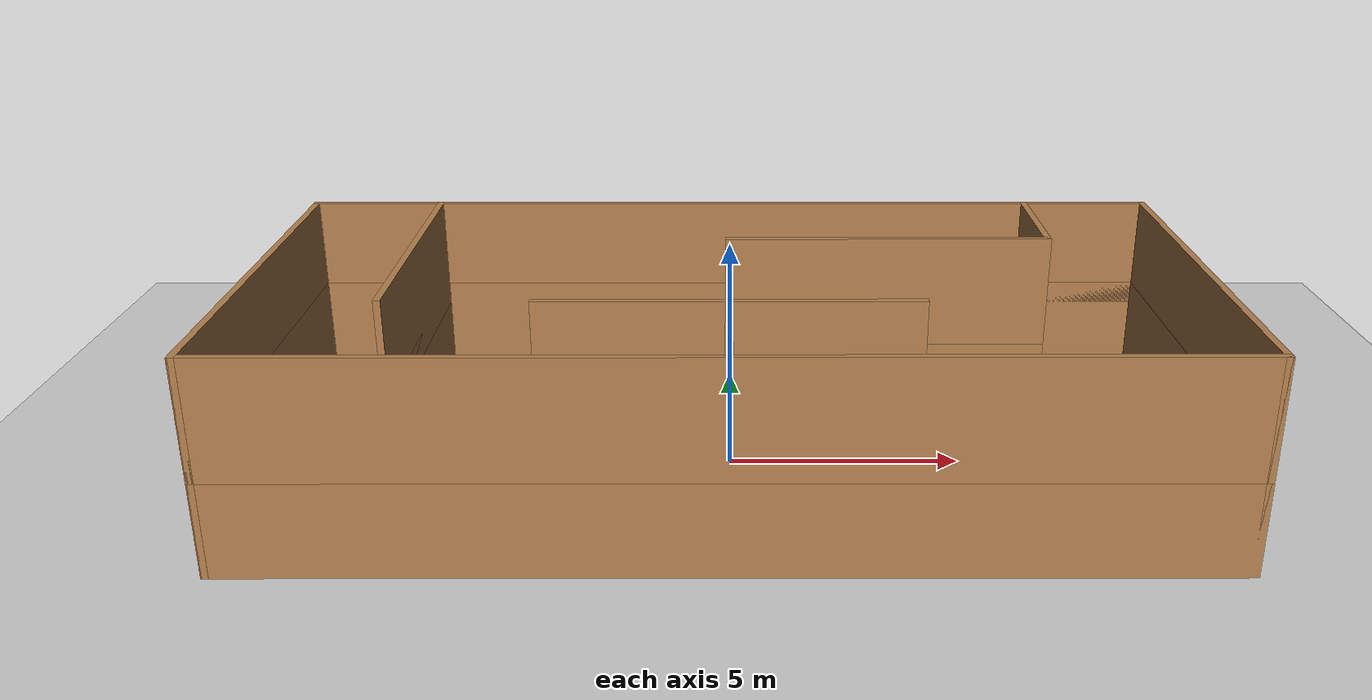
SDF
<sdf version="1.6">
 <world name="default">
  <light name="sun" type="directional">
   <pose>0 0 10 0 -0 0</pose>
   <diffuse>0.8 0.8 0.8 1</diffuse>
   <specular>0.2 0.2 0.2 1</specular>
   <attenuation>
    <range>1000</range>
    <constant>0.9</constant>
    <linear>0.01</linear>
    <quadratic>0.001</quadratic>
   </attenuation>
   <direction>-0.5 0.1 -0.9</direction>
  </light>
  <model name="ground_plane">
   <static>1</static>
   <link name="link">
    <collision name="collision">
     <geometry><plane><normal>0 0 1</normal><size>100 100</size></plane></geometry>
     <surface>
      <contact><collide_bitmask>65535</collide_bitmask></contact>
      <friction><ode><mu>100</mu><mu2>50</mu2></ode></friction>
     </surface>
    </collision>
    <visual name="visual">
     <cast_shadows>0</cast_shadows>
     <geometry><plane><normal>0 0 1</normal><size>100 100</size></plane></geometry>
     <material>
      <script><uri>file://media/materials/scripts/gazebo.material</uri><name>Gazebo/Grey</name></script>
     </material>
    </visual>
   </link>
  </model>
  <gravity>0 0 -9.8</gravity>
  <magnetic_field>6e-06 2.3e-05 -4.2e-05</magnetic_field>
  <atmosphere type="adiabatic"/>
  <physics name="default_physics" default="0" type="ode">
   <max_step_size>0.001</max_step_size>
   <real_time_factor>1</real_time_factor>
   <real_time_update_rate>1000</real_time_update_rate>
  </physics>
  <scene><ambient>0.4 0.4 0.4 1</ambient><background>0.7 0.7 0.7 1</background><shadows>1</shadows></scene>
  <spherical_coordinates>
   <surface_model>EARTH_WGS84</surface_model>
   <latitude_deg>0</latitude_deg>
   <longitude_deg>0</longitude_deg>
   <elevation>0</elevation>
   <heading_deg>0</heading_deg>
  </spherical_coordinates>
  <physics name="default_physics" default="0" type="ode">
   <ode>
    <solver>
     <type>quick</type>
     <iters>20</iters>
     <sor>1.3</sor>
     <use_dynamic_moi_rescaling>0</use_dynamic_moi_rescaling>
    </solver>
    <constraints>
     <cfm>0</cfm>
     <erp>0.2</erp>
     <contact_max_correcting_vel>100</contact_max_correcting_vel>
     <contact_surface_layer>0.001</contact_surface_layer>
    </constraints>
   </ode>
   <max_step_size>0.002</max_step_size>
   <real_time_factor>1</real_time_factor>
   <real_time_update_rate>500</real_time_update_rate>
  </physics>
  <audio><device>default</device></audio>
  <model name="apartment">
   <link name="Wall_0">
    <collision name="Wall_0_Collision">
     <geometry><box><size>20 0.15 2.5</size></box></geometry>
     <pose>0 0 1.25 0 -0 0</pose>
    </collision>
    <visual name="Wall_0_Visual">
     <pose>0 0 1.25 0 -0 0</pose>
     <geometry><box><size>20 0.15 2.5</size></box></geometry>
     <material>
      <script><uri>file://media/materials/scripts/gazebo.material</uri><name>Gazebo/Wood</name></script>
      <ambient>1 1 1 1</ambient>
     </material>
    </visual>
    <pose>0 -4.925 0 0 -0 0</pose>
   </link>
   <link name="Wall_1">
    <collision name="Wall_1_Collision">
     <geometry><box><size>10 0.15 2.5</size></box></geometry>
     <pose>0 0 1.25 0 -0 0</pose>
    </collision>
    <visual name="Wall_1_Visual">
     <pose>0 0 1.25 0 -0 0</pose>
     <geometry><box><size>10 0.15 2.5</size></box></geometry>
     <material>
      <script><uri>file://media/materials/scripts/gazebo.material</uri><name>Gazebo/Wood</name></script>
      <ambient>1 1 1 1</ambient>
     </material>
    </visual>
    <pose>9.925 0 0 0 -0 1.5708</pose>
   </link>
   <link name="Wall_11">
    <collision name="Wall_11_Collision">
     <geometry><box><size>3 0.15 2.5</size></box></geometry>
     <pose>0 0 1.25 0 -0 0</pose>
    </collision>
    <visual name="Wall_11_Visual">
     <pose>0 0 1.25 0 -0 0</pose>
     <geometry><box><size>3 0.15 2.5</size></box></geometry>
     <material>
      <script><uri>file://media/materials/scripts/gazebo.material</uri><name>Gazebo/Wood</name></script>
      <ambient>1 1 1 1</ambient>
     </material>
    </visual>
    <pose>-0.023615 -3.42368 0 0 -0 1.5708</pose>
   </link>
   <link name="Wall_12">
    <collision name="Wall_12_Collision">
     <geometry><box><size>4 0.15 2.5</size></box></geometry>
     <pose>0 0 1.25 0 -0 0</pose>
    </collision>
    <visual name="Wall_12_Visual">
     <pose>0 0 1.25 0 -0 0</pose>
     <geometry><box><size>4 0.15 2.5</size></box></geometry>
     <material>
      <script><uri>file://media/materials/scripts/gazebo.material</uri><name>Gazebo/Wood</name></script>
      <ambient>1 1 1 1</ambient>
     </material>
    </visual>
    <pose>-1.94862 -1.99868 0 0 -0 3.14159</pose>
   </link>
   <link name="Wall_14">
    <collision name="Wall_14_Collision">
     <geometry><box><size>4 0.15 2.5</size></box></geometry>
     <pose>0 0 1.25 0 -0 0</pose>
    </collision>
    <visual name="Wall_14_Visual">
     <pose>0 0 1.25 0 -0 0</pose>
     <geometry><box><size>4 0.15 2.5</size></box></geometry>
     <material>
      <script><uri>file://media/materials/scripts/gazebo.material</uri><name>Gazebo/Wood</name></script>
      <ambient>1 1 1 1</ambient>
     </material>
    </visual>
    <pose>1.90138 -1.99868 0 0 -0 0</pose>
   </link>
   <link name="Wall_2">
    <collision name="Wall_2_Collision">
     <geometry><box><size>20 0.15 2.5</size></box></geometry>
     <pose>0 0 1.25 0 -0 0</pose>
    </collision>
    <visual name="Wall_2_Visual">
     <pose>0 0 1.25 0 -0 0</pose>
     <geometry><box><size>20 0.15 2.5</size></box></geometry>
     <material>
      <script><uri>file://media/materials/scripts/gazebo.material</uri><name>Gazebo/Wood</name></script>
      <ambient>1 1 1 1</ambient>
     </material>
    </visual>
    <pose>0 4.925 0 0 -0 3.14159</pose>
   </link>
   <link name="Wall_20">
    <collision name="Wall_20_Collision">
     <geometry><box><size>7 0.15 2.5</size></box></geometry>
     <pose>0 0 1.25 0 -0 0</pose>
    </collision>
    <visual name="Wall_20_Visual">
     <pose>0 0 1.25 0 -0 0</pose>
     <geometry><box><size>7 0.15 2.5</size></box></geometry>
     <material>
      <script><uri>file://media/materials/scripts/gazebo.material</uri><name>Gazebo/Wood</name></script>
      <ambient>1 1 1 1</ambient>
     </material>
    </visual>
    <pose>-6.94656 1.49076 0 0 0 -1.5708</pose>
   </link>
   <link name="Wall_27">
    <collision name="Wall_27_Collision">
     <geometry><box><size>3 0.15 2.5</size></box></geometry>
     <pose>0 0 1.25 0 -0 0</pose>
    </collision>
    <visual name="Wall_27_Visual">
     <pose>0 0 1.25 0 -0 0</pose>
     <geometry><box><size>3 0.15 2.5</size></box></geometry>
     <material>
      <script><uri>file://media/materials/scripts/gazebo.material</uri><name>Gazebo/Wood</name></script>
      <ambient>1 1 1 1</ambient>
     </material>
    </visual>
    <pose>7.075 3.5 0 0 0 -1.5708</pose>
   </link>
   <link name="Wall_28">
    <collision name="Wall_28_Collision">
     <geometry><box><size>7.25 0.15 2.5</size></box></geometry>
     <pose>0 0 1.25 0 -0 0</pose>
    </collision>
    <visual name="Wall_28_Visual">
     <pose>0 0 1.25 0 -0 0</pose>
     <geometry><box><size>7.25 0.15 2.5</size></box></geometry>
     <material>
      <script><uri>file://media/materials/scripts/gazebo.material</uri><name>Gazebo/Wood</name></script>
      <ambient>1 1 1 1</ambient>
     </material>
    </visual>
    <pose>3.525 2.075 0 0 -0 3.14159</pose>
   </link>
   <link name="Wall_3">
    <collision name="Wall_3_Collision">
     <geometry><box><size>10 0.15 2.5</size></box></geometry>
     <pose>0 0 1.25 0 -0 0</pose>
    </collision>
    <visual name="Wall_3_Visual">
     <pose>0 0 1.25 0 -0 0</pose>
     <geometry><box><size>10 0.15 2.5</size></box></geometry>
     <material>
      <script><uri>file://media/materials/scripts/gazebo.material</uri><name>Gazebo/Wood</name></script>
      <ambient>1 1 1 1</ambient>
     </material>
    </visual>
    <pose>-9.925 0 0 0 0 -1.5708</pose>
   </link>
   <static>1</static>
  </model>
  <model name="apartment_0">
   <pose>0 0 2 0 -0 0</pose>
   <link name="Wall_0">
    <collision name="Wall_0_Collision">
     <geometry><box><size>20 0.15 2.5</size></box></geometry>
     <pose>0 0 1.25 0 -0 0</pose>
    </collision>
    <visual name="Wall_0_Visual">
     <pose>0 0 1.25 0 -0 0</pose>
     <geometry><box><size>20 0.15 2.5</size></box></geometry>
     <material>
      <script><uri>file://media/materials/scripts/gazebo.material</uri><name>Gazebo/Wood</name></script>
      <ambient>1 1 1 1</ambient>
     </material>
    </visual>
    <pose>0 -4.925 0 0 -0 0</pose>
   </link>
   <link name="Wall_1">
    <collision name="Wall_1_Collision">
     <geometry><box><size>10 0.15 2.5</size></box></geometry>
     <pose>0 0 1.25 0 -0 0</pose>
    </collision>
    <visual name="Wall_1_Visual">
     <pose>0 0 1.25 0 -0 0</pose>
     <geometry><box><size>10 0.15 2.5</size></box></geometry>
     <material>
      <script><uri>file://media/materials/scripts/gazebo.material</uri><name>Gazebo/Wood</name></script>
      <ambient>1 1 1 1</ambient>
     </material>
    </visual>
    <pose>9.925 0 0 0 -0 1.5708</pose>
   </link>
   <link name="Wall_11">
    <collision name="Wall_11_Collision">
     <geometry><box><size>3 0.15 2.5</size></box></geometry>
     <pose>0 0 1.25 0 -0 0</pose>
    </collision>
    <visual name="Wall_11_Visual">
     <pose>0 0 1.25 0 -0 0</pose>
     <geometry><box><size>3 0.15 2.5</size></box></geometry>
     <material>
      <script><uri>file://media/materials/scripts/gazebo.material</uri><name>Gazebo/Wood</name></script>
      <ambient>1 1 1 1</ambient>
     </material>
    </visual>
    <pose>-0.023615 -3.42368 0 0 -0 1.5708</pose>
   </link>
   <link name="Wall_12">
    <collision name="Wall_12_Collision">
     <geometry><box><size>4 0.15 2.5</size></box></geometry>
     <pose>0 0 1.25 0 -0 0</pose>
    </collision>
    <visual name="Wall_12_Visual">
     <pose>0 0 1.25 0 -0 0</pose>
     <geometry><box><size>4 0.15 2.5</size></box></geometry>
     <material>
      <script><uri>file://media/materials/scripts/gazebo.material</uri><name>Gazebo/Wood</name></script>
      <ambient>1 1 1 1</ambient>
     </material>
    </visual>
    <pose>-1.94862 -1.99868 0 0 -0 3.14159</pose>
   </link>
   <link name="Wall_14">
    <collision name="Wall_14_Collision">
     <geometry><box><size>4 0.15 2.5</size></box></geometry>
     <pose>0 0 1.25 0 -0 0</pose>
    </collision>
    <visual name="Wall_14_Visual">
     <pose>0 0 1.25 0 -0 0</pose>
     <geometry><box><size>4 0.15 2.5</size></box></geometry>
     <material>
      <script><uri>file://media/materials/scripts/gazebo.material</uri><name>Gazebo/Wood</name></script>
      <ambient>1 1 1 1</ambient>
     </material>
    </visual>
    <pose>1.90138 -1.99868 0 0 -0 0</pose>
   </link>
   <link name="Wall_2">
    <collision name="Wall_2_Collision">
     <geometry><box><size>20 0.15 2.5</size></box></geometry>
     <pose>0 0 1.25 0 -0 0</pose>
    </collision>
    <visual name="Wall_2_Visual">
     <pose>0 0 1.25 0 -0 0</pose>
     <geometry><box><size>20 0.15 2.5</size></box></geometry>
     <material>
      <script><uri>file://media/materials/scripts/gazebo.material</uri><name>Gazebo/Wood</name></script>
      <ambient>1 1 1 1</ambient>
     </material>
    </visual>
    <pose>0 4.925 0 0 -0 3.14159</pose>
   </link>
   <link name="Wall_20">
    <collision name="Wall_20_Collision">
     <geometry><box><size>7 0.15 2.5</size></box></geometry>
     <pose>0 0 1.25 0 -0 0</pose>
    </collision>
    <visual name="Wall_20_Visual">
     <pose>0 0 1.25 0 -0 0</pose>
     <geometry><box><size>7 0.15 2.5</size></box></geometry>
     <material>
      <script><uri>file://media/materials/scripts/gazebo.material</uri><name>Gazebo/Wood</name></script>
      <ambient>1 1 1 1</ambient>
     </material>
    </visual>
    <pose>-6.94656 1.49076 0 0 0 -1.5708</pose>
   </link>
   <link name="Wall_27">
    <collision name="Wall_27_Collision">
     <geometry><box><size>3 0.15 2.5</size></box></geometry>
     <pose>0 0 1.25 0 -0 0</pose>
    </collision>
    <visual name="Wall_27_Visual">
     <pose>0 0 1.25 0 -0 0</pose>
     <geometry><box><size>3 0.15 2.5</size></box></geometry>
     <material>
      <script><uri>file://media/materials/scripts/gazebo.material</uri><name>Gazebo/Wood</name></script>
      <ambient>1 1 1 1</ambient>
     </material>
    </visual>
    <pose>7.075 3.5 0 0 0 -1.5708</pose>
   </link>
   <link name="Wall_28">
    <collision name="Wall_28_Collision">
     <geometry><box><size>7.25 0.15 2.5</size></box></geometry>
     <pose>0 0 1.25 0 -0 0</pose>
    </collision>
    <visual name="Wall_28_Visual">
     <pose>0 0 1.25 0 -0 0</pose>
     <geometry><box><size>7.25 0.15 2.5</size></box></geometry>
     <material>
      <script><uri>file://media/materials/scripts/gazebo.material</uri><name>Gazebo/Wood</name></script>
      <ambient>1 1 1 1</ambient>
     </material>
    </visual>
    <pose>3.525 2.075 0 0 -0 3.14159</pose>
   </link>
   <link name="Wall_3">
    <collision name="Wall_3_Collision">
     <geometry><box><size>10 0.15 2.5</size></box></geometry>
     <pose>0 0 1.25 0 -0 0</pose>
    </collision>
    <visual name="Wall_3_Visual">
     <pose>0 0 1.25 0 -0 0</pose>
     <geometry><box><size>10 0.15 2.5</size></box></geometry>
     <material>
      <script><uri>file://media/materials/scripts/gazebo.material</uri><name>Gazebo/Wood</name></script>
      <ambient>1 1 1 1</ambient>
     </material>
    </visual>
    <pose>-9.925 0 0 0 0 -1.5708</pose>
   </link>
   <static>1</static>
  </model>
 </world>
</sdf>
